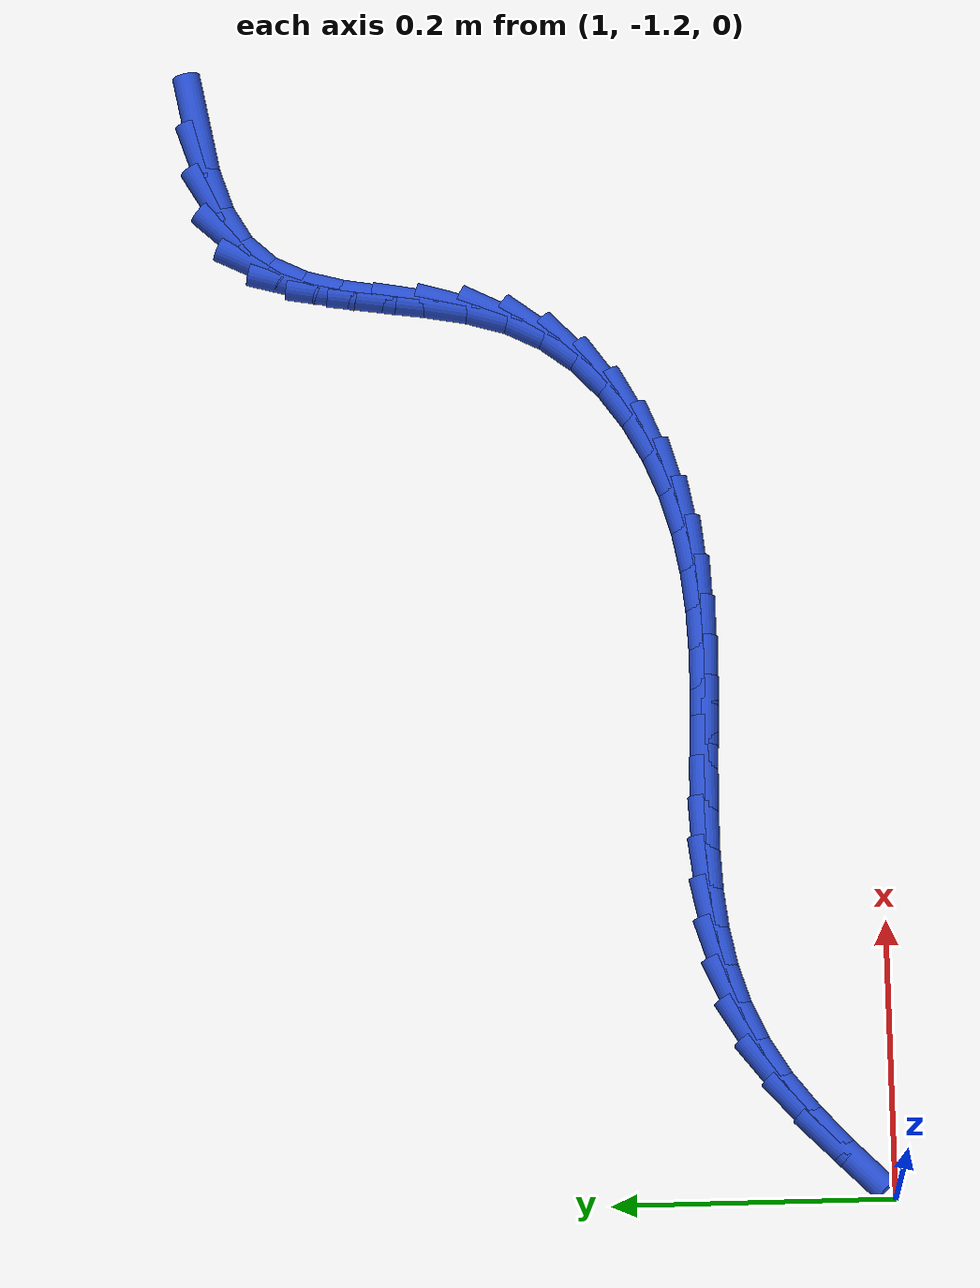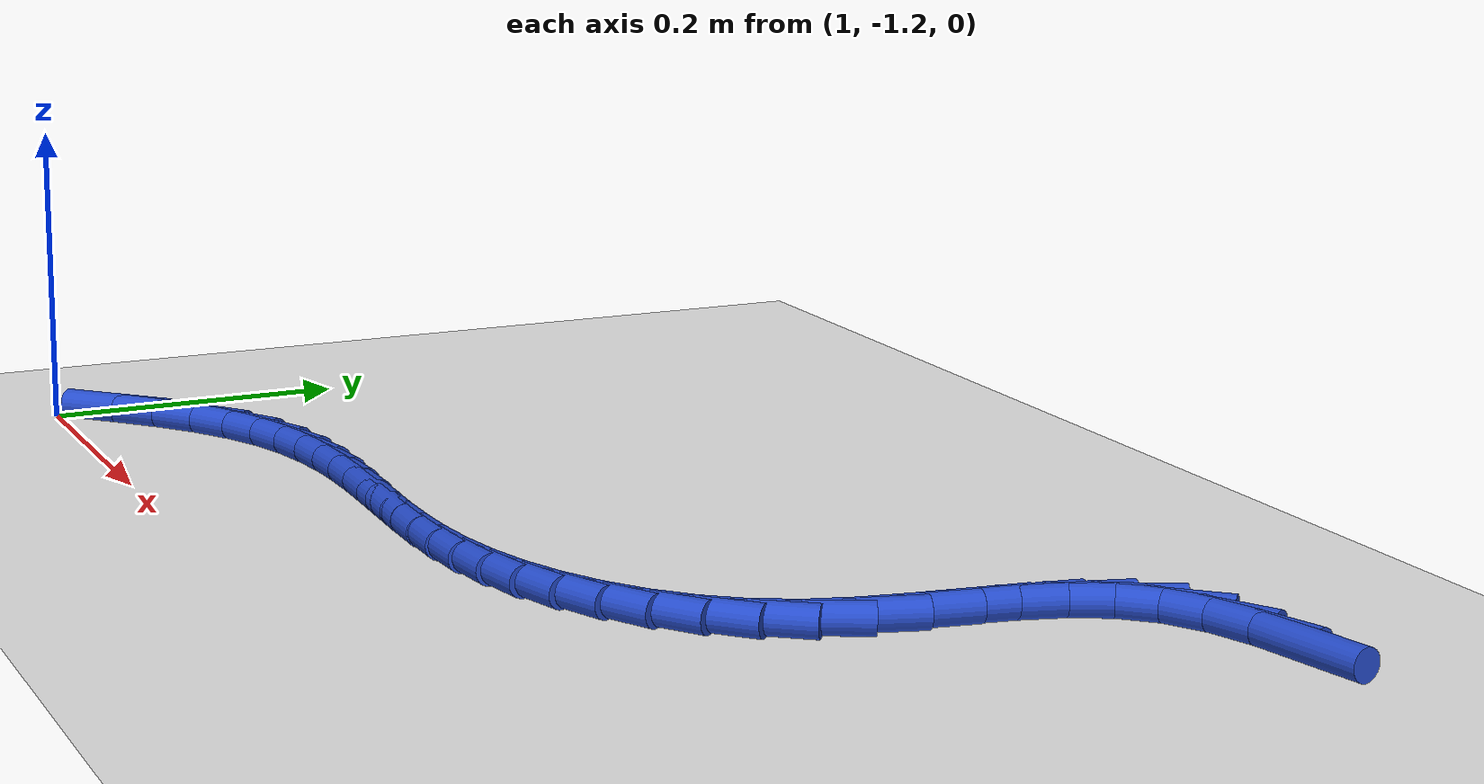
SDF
<sdf version="1.6">
 <world name="default">
  <model name="ground_plane">
   <static>1</static>
   <link name="link">
    <collision name="collision">
     <geometry><plane><normal>0 0 1</normal><size>100 100</size></plane></geometry>
     <surface><friction><ode><mu>100</mu><mu2>50</mu2></ode></friction></surface>
    </collision>
    <visual name="visual">
     <cast_shadows>0</cast_shadows>
     <geometry><plane><normal>0 0 1</normal><size>100 100</size></plane></geometry>
     <material>
      <script><uri>file://media/materials/scripts/gazebo.material</uri><name>Gazebo/WhiteGlow</name></script>
     </material>
    </visual>
   </link>
  </model>
  <model name="line">
   <link name="link_171">
    <pose>1.7957763543377836 -0.7230087566327483 0.01 0 1.57 0.18486930666896365</pose>
    <collision name="collision">
     <geometry><cylinder><radius>0.01</radius><length>0.08</length></cylinder></geometry>
    </collision>
    <visual name="visual">
     <material>
      <script><name>Gazebo/Blue</name><uri>file://media/materials/scripts/gazebo.material</uri></script>
     </material>
     <geometry><cylinder><radius>0.01</radius><length>0.08</length></cylinder></geometry>
    </visual>
   </link>
   <link name="link_172">
    <pose>1.7612244520885771 -0.7294701203866094 0.01 0 1.57 0.31882469187835416</pose>
    <collision name="collision">
     <geometry><cylinder><radius>0.01</radius><length>0.08</length></cylinder></geometry>
    </collision>
    <visual name="visual">
     <material>
      <script><name>Gazebo/Blue</name><uri>file://media/materials/scripts/gazebo.material</uri></script>
     </material>
     <geometry><cylinder><radius>0.01</radius><length>0.08</length></cylinder></geometry>
    </visual>
   </link>
   <link name="link_173">
    <pose>1.7308772435960658 -0.7394872948845312 0.01 0 1.57 0.5274814983737287</pose>
    <collision name="collision">
     <geometry><cylinder><radius>0.01</radius><length>0.08</length></cylinder></geometry>
    </collision>
    <visual name="visual">
     <material>
      <script><name>Gazebo/Blue</name><uri>file://media/materials/scripts/gazebo.material</uri></script>
     </material>
     <geometry><cylinder><radius>0.01</radius><length>0.08</length></cylinder></geometry>
    </visual>
   </link>
   <link name="link_174">
    <pose>1.706133504113916 -0.7539014854230808 0.01 0 1.57 0.8283895789026833</pose>
    <collision name="collision">
     <geometry><cylinder><radius>0.01</radius><length>0.08</length></cylinder></geometry>
    </collision>
    <visual name="visual">
     <material>
      <script><name>Gazebo/Blue</name><uri>file://media/materials/scripts/gazebo.material</uri></script>
     </material>
     <geometry><cylinder><radius>0.01</radius><length>0.08</length></cylinder></geometry>
    </visual>
   </link>
   <link name="link_175">
    <pose>1.688209445924691 -0.7734369755224538 0.01 0 1.57 1.1168415273949073</pose>
    <collision name="collision">
     <geometry><cylinder><radius>0.01</radius><length>0.08</length></cylinder></geometry>
    </collision>
    <visual name="visual">
     <material>
      <script><name>Gazebo/Blue</name><uri>file://media/materials/scripts/gazebo.material</uri></script>
     </material>
     <geometry><cylinder><radius>0.01</radius><length>0.08</length></cylinder></geometry>
    </visual>
   </link>
   <link name="link_176">
    <pose>1.676419317928138 -0.7975999433227723 0.01 0 1.57 1.3061649351978388</pose>
    <collision name="collision">
     <geometry><cylinder><radius>0.01</radius><length>0.08</length></cylinder></geometry>
    </collision>
    <visual name="visual">
     <material>
      <script><name>Gazebo/Blue</name><uri>file://media/materials/scripts/gazebo.material</uri></script>
     </material>
     <geometry><cylinder><radius>0.01</radius><length>0.08</length></cylinder></geometry>
    </visual>
   </link>
   <link name="link_177">
    <pose>1.668947412203694 -0.825172890317952 0.01 0 1.57 1.4048305487635901</pose>
    <collision name="collision">
     <geometry><cylinder><radius>0.01</radius><length>0.08</length></cylinder></geometry>
    </collision>
    <visual name="visual">
     <material>
      <script><name>Gazebo/Blue</name><uri>file://media/materials/scripts/gazebo.material</uri></script>
     </material>
     <geometry><cylinder><radius>0.01</radius><length>0.08</length></cylinder></geometry>
    </visual>
   </link>
   <link name="link_178">
    <pose>1.663963107160301 -0.8549287665970684 0.01 0 1.57 1.430816531778798</pose>
    <collision name="collision">
     <geometry><cylinder><radius>0.01</radius><length>0.08</length></cylinder></geometry>
    </collision>
    <visual name="visual">
     <material>
      <script><name>Gazebo/Blue</name><uri>file://media/materials/scripts/gazebo.material</uri></script>
     </material>
     <geometry><cylinder><radius>0.01</radius><length>0.08</length></cylinder></geometry>
    </visual>
   </link>
   <link name="link_179">
    <pose>1.6596357812068991 -0.885640522249193 0.01 0 1.57 1.39201415512268</pose>
    <collision name="collision">
     <geometry><cylinder><radius>0.01</radius><length>0.08</length></cylinder></geometry>
    </collision>
    <visual name="visual">
     <material>
      <script><name>Gazebo/Blue</name><uri>file://media/materials/scripts/gazebo.material</uri></script>
     </material>
     <geometry><cylinder><radius>0.01</radius><length>0.08</length></cylinder></geometry>
    </visual>
   </link>
   <link name="link_180">
    <pose>1.6541348127524313 -0.9160811073634016 0.01 0 1.57 1.2849747435918648</pose>
    <collision name="collision">
     <geometry><cylinder><radius>0.01</radius><length>0.08</length></cylinder></geometry>
    </collision>
    <visual name="visual">
     <material>
      <script><name>Gazebo/Blue</name><uri>file://media/materials/scripts/gazebo.material</uri></script>
     </material>
     <geometry><cylinder><radius>0.01</radius><length>0.08</length></cylinder></geometry>
    </visual>
   </link>
   <link name="link_181">
    <pose>1.6456295802058394 -0.9450234720287665 0.01 0 1.57 1.1089352038490832</pose>
    <collision name="collision">
     <geometry><cylinder><radius>0.01</radius><length>0.08</length></cylinder></geometry>
    </collision>
    <visual name="visual">
     <material>
      <script><name>Gazebo/Blue</name><uri>file://media/materials/scripts/gazebo.material</uri></script>
     </material>
     <geometry><cylinder><radius>0.01</radius><length>0.08</length></cylinder></geometry>
    </visual>
   </link>
   <link name="link_182">
    <pose>1.6325248296642347 -0.9713504502499745 0.01 0 1.57 0.9238594558993017</pose>
    <collision name="collision">
     <geometry><cylinder><radius>0.01</radius><length>0.08</length></cylinder></geometry>
    </collision>
    <visual name="visual">
     <material>
      <script><name>Gazebo/Blue</name><uri>file://media/materials/scripts/gazebo.material</uri></script>
     </material>
     <geometry><cylinder><radius>0.01</radius><length>0.08</length></cylinder></geometry>
    </visual>
   </link>
   <link name="link_183">
    <pose>1.6148754607675262 -0.9947152678134162 0.01 0 1.57 0.7603532946916063</pose>
    <collision name="collision">
     <geometry><cylinder><radius>0.01</radius><length>0.08</length></cylinder></geometry>
    </collision>
    <visual name="visual">
     <material>
      <script><name>Gazebo/Blue</name><uri>file://media/materials/scripts/gazebo.material</uri></script>
     </material>
     <geometry><cylinder><radius>0.01</radius><length>0.08</length></cylinder></geometry>
    </visual>
   </link>
   <link name="link_184">
    <pose>1.5934424017494442 -1.0151007674848809 0.01 0 1.57 0.6181812946539335</pose>
    <collision name="collision">
     <geometry><cylinder><radius>0.01</radius><length>0.08</length></cylinder></geometry>
    </collision>
    <visual name="visual">
     <material>
      <script><name>Gazebo/Blue</name><uri>file://media/materials/scripts/gazebo.material</uri></script>
     </material>
     <geometry><cylinder><radius>0.01</radius><length>0.08</length></cylinder></geometry>
    </visual>
   </link>
   <link name="link_185">
    <pose>1.5689892517788762 -1.0324910389847277 0.01 0 1.57 0.4938548218305689</pose>
    <collision name="collision">
     <geometry><cylinder><radius>0.01</radius><length>0.08</length></cylinder></geometry>
    </collision>
    <visual name="visual">
     <material>
      <script><name>Gazebo/Blue</name><uri>file://media/materials/scripts/gazebo.material</uri></script>
     </material>
     <geometry><cylinder><radius>0.01</radius><length>0.08</length></cylinder></geometry>
    </visual>
   </link>
   <link name="link_186">
    <pose>1.5422796100247143 -1.0468701720333147 0.01 0 1.57 0.38267690698334167</pose>
    <collision name="collision">
     <geometry><cylinder><radius>0.01</radius><length>0.08</length></cylinder></geometry>
    </collision>
    <visual name="visual">
     <material>
      <script><name>Gazebo/Blue</name><uri>file://media/materials/scripts/gazebo.material</uri></script>
     </material>
     <geometry><cylinder><radius>0.01</radius><length>0.08</length></cylinder></geometry>
    </visual>
   </link>
   <link name="link_187">
    <pose>1.5140770756558457 -1.058222256351 0.01 0 1.57 0.2797489822124081</pose>
    <collision name="collision">
     <geometry><cylinder><radius>0.01</radius><length>0.08</length></cylinder></geometry>
    </collision>
    <visual name="visual">
     <material>
      <script><name>Gazebo/Blue</name><uri>file://media/materials/scripts/gazebo.material</uri></script>
     </material>
     <geometry><cylinder><radius>0.01</radius><length>0.08</length></cylinder></geometry>
    </visual>
   </link>
   <link name="link_188">
    <pose>1.485140121969399 -1.0665353388183845 0.01 0 1.57 0.18529565919202512</pose>
    <collision name="collision">
     <geometry><cylinder><radius>0.01</radius><length>0.08</length></cylinder></geometry>
    </collision>
    <visual name="visual">
     <material>
      <script><name>Gazebo/Blue</name><uri>file://media/materials/scripts/gazebo.material</uri></script>
     </material>
     <geometry><cylinder><radius>0.01</radius><length>0.08</length></cylinder></geometry>
    </visual>
   </link>
   <link name="link_189">
    <pose>1.4559578257348895 -1.0720054397648853 0.01 0 1.57 0.10628132890983871</pose>
    <collision name="collision">
     <geometry><cylinder><radius>0.01</radius><length>0.08</length></cylinder></geometry>
    </collision>
    <visual name="visual">
     <material>
      <script><name>Gazebo/Blue</name><uri>file://media/materials/scripts/gazebo.material</uri></script>
     </material>
     <geometry><cylinder><radius>0.01</radius><length>0.08</length></cylinder></geometry>
    </visual>
   </link>
   <link name="link_190">
    <pose>1.4266222751683368 -1.0751350536951536 0.01 0 1.57 0.04469586054657586</pose>
    <collision name="collision">
     <geometry><cylinder><radius>0.01</radius><length>0.08</length></cylinder></geometry>
    </collision>
    <visual name="visual">
     <material>
      <script><name>Gazebo/Blue</name><uri>file://media/materials/scripts/gazebo.material</uri></script>
     </material>
     <geometry><cylinder><radius>0.01</radius><length>0.08</length></cylinder></geometry>
    </visual>
   </link>
   <link name="link_191">
    <pose>1.3971937055102646 -1.076451265531643 0.01 0 1.57 0.0010147074504150626</pose>
    <collision name="collision">
     <geometry><cylinder><radius>0.01</radius><length>0.08</length></cylinder></geometry>
    </collision>
    <visual name="visual">
     <material>
      <script><name>Gazebo/Blue</name><uri>file://media/materials/scripts/gazebo.material</uri></script>
     </material>
     <geometry><cylinder><radius>0.01</radius><length>0.08</length></cylinder></geometry>
    </visual>
   </link>
   <link name="link_192">
    <pose>1.3677323520012006 -1.076481160196808 0.01 0 1.57 -0.02477375806234151</pose>
    <collision name="collision">
     <geometry><cylinder><radius>0.01</radius><length>0.08</length></cylinder></geometry>
    </collision>
    <visual name="visual">
     <material>
      <script><name>Gazebo/Blue</name><uri>file://media/materials/scripts/gazebo.material</uri></script>
     </material>
     <geometry><cylinder><radius>0.01</radius><length>0.08</length></cylinder></geometry>
    </visual>
   </link>
   <link name="link_193">
    <pose>1.3382984498816692 -1.0757518226131015 0.01 0 1.57 -0.032751790342796946</pose>
    <collision name="collision">
     <geometry><cylinder><radius>0.01</radius><length>0.08</length></cylinder></geometry>
    </collision>
    <visual name="visual">
     <material>
      <script><name>Gazebo/Blue</name><uri>file://media/materials/scripts/gazebo.material</uri></script>
     </material>
     <geometry><cylinder><radius>0.01</radius><length>0.08</length></cylinder></geometry>
    </visual>
   </link>
   <link name="link_194">
    <pose>1.308952234392195 -1.0747903377029773 0.01 0 1.57 -0.022824332571977177</pose>
    <collision name="collision">
     <geometry><cylinder><radius>0.01</radius><length>0.08</length></cylinder></geometry>
    </collision>
    <visual name="visual">
     <material>
      <script><name>Gazebo/Blue</name><uri>file://media/materials/scripts/gazebo.material</uri></script>
     </material>
     <geometry><cylinder><radius>0.01</radius><length>0.08</length></cylinder></geometry>
    </visual>
   </link>
   <link name="link_195">
    <pose>1.2797539407733056 -1.0741237903888894 0.01 0 1.57 0.005362986606969974</pose>
    <collision name="collision">
     <geometry><cylinder><radius>0.01</radius><length>0.08</length></cylinder></geometry>
    </collision>
    <visual name="visual">
     <material>
      <script><name>Gazebo/Blue</name><uri>file://media/materials/scripts/gazebo.material</uri></script>
     </material>
     <geometry><cylinder><radius>0.01</radius><length>0.08</length></cylinder></geometry>
    </visual>
   </link>
   <link name="link_196">
    <pose>1.2507638042655247 -1.074279265593291 0.01 0 1.57 0.05233695501287034</pose>
    <collision name="collision">
     <geometry><cylinder><radius>0.01</radius><length>0.08</length></cylinder></geometry>
    </collision>
    <visual name="visual">
     <material>
      <script><name>Gazebo/Blue</name><uri>file://media/materials/scripts/gazebo.material</uri></script>
     </material>
     <geometry><cylinder><radius>0.01</radius><length>0.08</length></cylinder></geometry>
    </visual>
   </link>
   <link name="link_197">
    <pose>1.2220420601093798 -1.075783848238636 0.01 0 1.57 0.11851225717194072</pose>
    <collision name="collision">
     <geometry><cylinder><radius>0.01</radius><length>0.08</length></cylinder></geometry>
    </collision>
    <visual name="visual">
     <material>
      <script><name>Gazebo/Blue</name><uri>file://media/materials/scripts/gazebo.material</uri></script>
     </material>
     <geometry><cylinder><radius>0.01</radius><length>0.08</length></cylinder></geometry>
    </visual>
   </link>
   <link name="link_198">
    <pose>1.1936489435453943 -1.0791646232473784 0.01 0 1.57 0.20367787989690855</pose>
    <collision name="collision">
     <geometry><cylinder><radius>0.01</radius><length>0.08</length></cylinder></geometry>
    </collision>
    <visual name="visual">
     <material>
      <script><name>Gazebo/Blue</name><uri>file://media/materials/scripts/gazebo.material</uri></script>
     </material>
     <geometry><cylinder><radius>0.01</radius><length>0.08</length></cylinder></geometry>
    </visual>
   </link>
   <link name="link_199">
    <pose>1.165644689814096 -1.084948675541971 0.01 0 1.57 0.30630076626444125</pose>
    <collision name="collision">
     <geometry><cylinder><radius>0.01</radius><length>0.08</length></cylinder></geometry>
    </collision>
    <visual name="visual">
     <material>
      <script><name>Gazebo/Blue</name><uri>file://media/materials/scripts/gazebo.material</uri></script>
     </material>
     <geometry><cylinder><radius>0.01</radius><length>0.08</length></cylinder></geometry>
    </visual>
   </link>
   <link name="link_200">
    <pose>1.1380895341560087 -1.0936630900448687 0.01 0 1.57 0.42289210135005484</pose>
    <collision name="collision">
     <geometry><cylinder><radius>0.01</radius><length>0.08</length></cylinder></geometry>
    </collision>
    <visual name="visual">
     <material>
      <script><name>Gazebo/Blue</name><uri>file://media/materials/scripts/gazebo.material</uri></script>
     </material>
     <geometry><cylinder><radius>0.01</radius><length>0.08</length></cylinder></geometry>
    </visual>
   </link>
   <link name="link_201">
    <pose>1.111043711811659 -1.105834951678524 0.01 0 1.57 0.5477649022645827</pose>
    <collision name="collision">
     <geometry><cylinder><radius>0.01</radius><length>0.08</length></cylinder></geometry>
    </collision>
    <visual name="visual">
     <material>
      <script><name>Gazebo/Blue</name><uri>file://media/materials/scripts/gazebo.material</uri></script>
     </material>
     <geometry><cylinder><radius>0.01</radius><length>0.08</length></cylinder></geometry>
    </visual>
   </link>
   <link name="link_202">
    <pose>1.0845676680674032 -1.1219862425219587 0.01 0 1.57 0.6601246749506882</pose>
    <collision name="collision">
     <geometry><cylinder><radius>0.01</radius><length>0.08</length></cylinder></geometry>
    </collision>
    <visual name="visual">
     <material>
      <script><name>Gazebo/Blue</name><uri>file://media/materials/scripts/gazebo.material</uri></script>
     </material>
     <geometry><cylinder><radius>0.01</radius><length>0.08</length></cylinder></geometry>
    </visual>
   </link>
   <link name="link_203">
    <pose>1.0587468707208998 -1.1420310489551262 0.01 0 1.57 0.7360799792965312</pose>
    <collision name="collision">
     <geometry><cylinder><radius>0.01</radius><length>0.08</length></cylinder></geometry>
    </collision>
    <visual name="visual">
     <material>
      <script><name>Gazebo/Blue</name><uri>file://media/materials/scripts/gazebo.material</uri></script>
     </material>
     <geometry><cylinder><radius>0.01</radius><length>0.08</length></cylinder></geometry>
    </visual>
   </link>
   <link name="link_204">
    <pose>1.033715175036386 -1.164707934546999 0.01 0 1.57 0.7814405541929585</pose>
    <collision name="collision">
     <geometry><cylinder><radius>0.01</radius><length>0.08</length></cylinder></geometry>
    </collision>
    <visual name="visual">
     <material>
      <script><name>Gazebo/Blue</name><uri>file://media/materials/scripts/gazebo.material</uri></script>
     </material>
     <geometry><cylinder><radius>0.01</radius><length>0.08</length></cylinder></geometry>
    </visual>
   </link>
  </model>
 </world>
</sdf>
